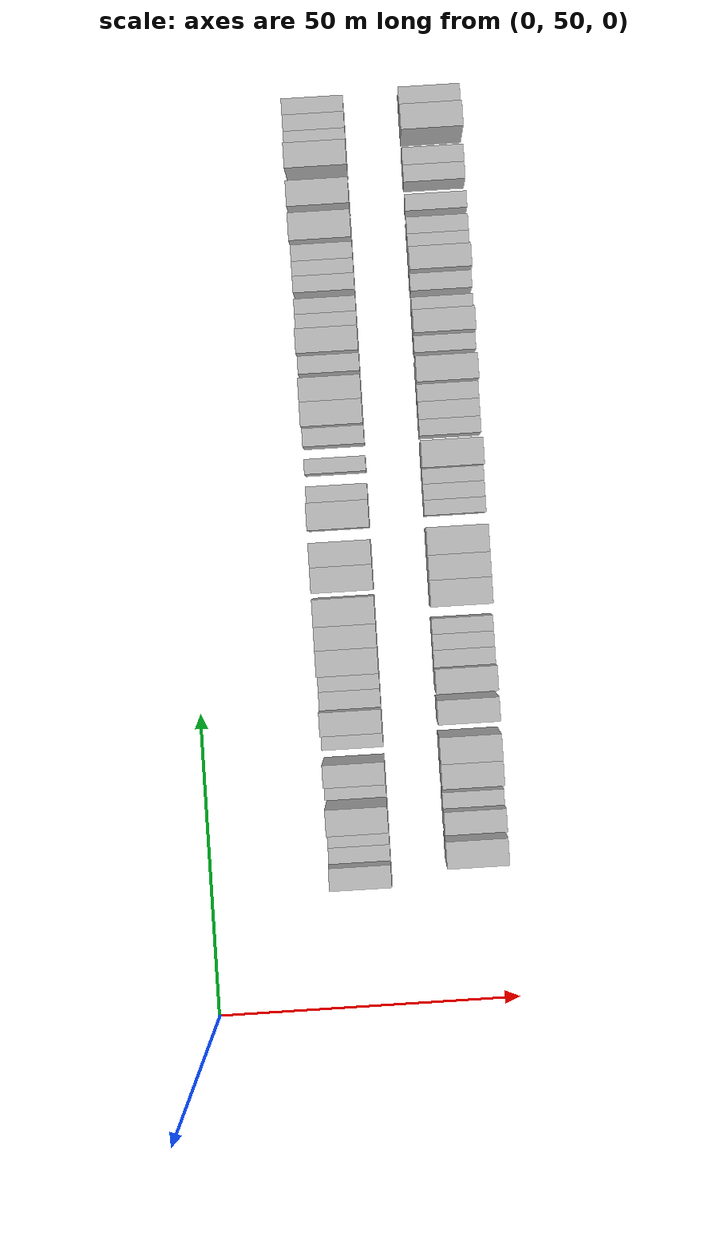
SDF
<sdf version="1.6">
 <world name="default">
  <model name="building_67">
   <static>1</static>
   <pose>25.0000 73.3921 0 0.000000 0.000000 0.000000</pose>
   <link name="link">
    <pose>0 0 4.50 0 0 0</pose>
    <collision name="collision"><geometry><box><size>10.0000 3.6559 9.0000</size></box></geometry></collision>
    <visual name="visual">
     <cast_shadows>0</cast_shadows>
     <geometry><box><size>10.0000 3.6559 9.0000</size></box></geometry>
     <material>
      <script>
       <uri>model://HANNAS_wall/materials/scripts</uri>
       <uri>model://HANNAS_wall/materials/textures</uri>
       <name>vrc/HANNAS_wall</name>
      </script>
     </material>
    </visual>
   </link>
  </model>
  <model name="building_68">
   <static>1</static>
   <pose>25.0000 76.5327 0 0.000000 0.000000 0.000000</pose>
   <link name="link">
    <pose>0 0 3.00 0 0 0</pose>
    <collision name="collision"><geometry><box><size>10.0000 2.6252 6.0000</size></box></geometry></collision>
    <visual name="visual">
     <cast_shadows>0</cast_shadows>
     <geometry><box><size>10.0000 2.6252 6.0000</size></box></geometry>
     <material>
      <script>
       <uri>model://HANNAS_wall/materials/scripts</uri>
       <uri>model://HANNAS_wall/materials/textures</uri>
       <name>vrc/HANNAS_wall</name>
      </script>
     </material>
    </visual>
   </link>
  </model>
  <model name="building_69">
   <static>1</static>
   <pose>25.0000 79.0698 0 0.000000 0.000000 0.000000</pose>
   <link name="link">
    <pose>0 0 3.00 0 0 0</pose>
    <collision name="collision"><geometry><box><size>10.0000 2.4490 6.0000</size></box></geometry></collision>
    <visual name="visual">
     <cast_shadows>0</cast_shadows>
     <geometry><box><size>10.0000 2.4490 6.0000</size></box></geometry>
     <material>
      <script>
       <uri>model://HANNAS_wall/materials/scripts</uri>
       <uri>model://HANNAS_wall/materials/textures</uri>
       <name>vrc/HANNAS_wall</name>
      </script>
     </material>
    </visual>
   </link>
  </model>
  <model name="building_70">
   <static>1</static>
   <pose>25.0000 82.4172 0 0.000000 0.000000 0.000000</pose>
   <link name="link">
    <pose>0 0 4.50 0 0 0</pose>
    <collision name="collision"><geometry><box><size>10.0000 4.2457 9.0000</size></box></geometry></collision>
    <visual name="visual">
     <cast_shadows>0</cast_shadows>
     <geometry><box><size>10.0000 4.2457 9.0000</size></box></geometry>
     <material>
      <script>
       <uri>model://HANNAS_wall/materials/scripts</uri>
       <uri>model://HANNAS_wall/materials/textures</uri>
       <name>vrc/HANNAS_wall</name>
      </script>
     </material>
    </visual>
   </link>
  </model>
  <model name="building_71">
   <static>1</static>
   <pose>25.0000 86.7797 0 0.000000 0.000000 0.000000</pose>
   <link name="link">
    <pose>0 0 3.00 0 0 0</pose>
    <collision name="collision"><geometry><box><size>10.0000 2.4792 6.0000</size></box></geometry></collision>
    <visual name="visual">
     <cast_shadows>0</cast_shadows>
     <geometry><box><size>10.0000 2.4792 6.0000</size></box></geometry>
     <material>
      <script>
       <uri>model://HANNAS_wall/materials/scripts</uri>
       <uri>model://HANNAS_wall/materials/textures</uri>
       <name>vrc/HANNAS_wall</name>
      </script>
     </material>
    </visual>
   </link>
  </model>
  <model name="building_72">
   <static>1</static>
   <pose>25.0000 89.8450 0 0.000000 0.000000 0.000000</pose>
   <link name="link">
    <pose>0 0 4.50 0 0 0</pose>
    <collision name="collision"><geometry><box><size>10.0000 3.6514 9.0000</size></box></geometry></collision>
    <visual name="visual">
     <cast_shadows>0</cast_shadows>
     <geometry><box><size>10.0000 3.6514 9.0000</size></box></geometry>
     <material>
      <script>
       <uri>model://HANNAS_wall/materials/scripts</uri>
       <uri>model://HANNAS_wall/materials/textures</uri>
       <name>vrc/HANNAS_wall</name>
      </script>
     </material>
    </visual>
   </link>
  </model>
  <model name="building_73">
   <static>1</static>
   <pose>25.0000 94.9658 0 0.000000 0.000000 0.000000</pose>
   <link name="link">
    <pose>0 0 3.00 0 0 0</pose>
    <collision name="collision"><geometry><box><size>10.0000 2.5901 6.0000</size></box></geometry></collision>
    <visual name="visual">
     <cast_shadows>0</cast_shadows>
     <geometry><box><size>10.0000 2.5901 6.0000</size></box></geometry>
     <material>
      <script>
       <uri>model://HANNAS_wall/materials/scripts</uri>
       <uri>model://HANNAS_wall/materials/textures</uri>
       <name>vrc/HANNAS_wall</name>
      </script>
     </material>
    </visual>
   </link>
  </model>
  <model name="building_74">
   <static>1</static>
   <pose>25.0000 98.1801 0 0.000000 0.000000 0.000000</pose>
   <link name="link">
    <pose>0 0 4.50 0 0 0</pose>
    <collision name="collision"><geometry><box><size>10.0000 3.8386 9.0000</size></box></geometry></collision>
    <visual name="visual">
     <cast_shadows>0</cast_shadows>
     <geometry><box><size>10.0000 3.8386 9.0000</size></box></geometry>
     <material>
      <script>
       <uri>model://HANNAS_wall/materials/scripts</uri>
       <uri>model://HANNAS_wall/materials/textures</uri>
       <name>vrc/HANNAS_wall</name>
      </script>
     </material>
    </visual>
   </link>
  </model>
  <model name="building_75">
   <static>1</static>
   <pose>25.0000 101.5952 0 0.000000 0.000000 0.000000</pose>
   <link name="link">
    <pose>0 0 3.00 0 0 0</pose>
    <collision name="collision"><geometry><box><size>10.0000 2.9917 6.0000</size></box></geometry></collision>
    <visual name="visual">
     <cast_shadows>0</cast_shadows>
     <geometry><box><size>10.0000 2.9917 6.0000</size></box></geometry>
     <material>
      <script>
       <uri>model://HANNAS_wall/materials/scripts</uri>
       <uri>model://HANNAS_wall/materials/textures</uri>
       <name>vrc/HANNAS_wall</name>
      </script>
     </material>
    </visual>
   </link>
  </model>
  <model name="building_76">
   <static>1</static>
   <pose>25.0000 104.4360 0 0.000000 0.000000 0.000000</pose>
   <link name="link">
    <pose>0 0 3.00 0 0 0</pose>
    <collision name="collision"><geometry><box><size>10.0000 2.6897 6.0000</size></box></geometry></collision>
    <visual name="visual">
     <cast_shadows>0</cast_shadows>
     <geometry><box><size>10.0000 2.6897 6.0000</size></box></geometry>
     <material>
      <script>
       <uri>model://HANNAS_wall/materials/scripts</uri>
       <uri>model://HANNAS_wall/materials/textures</uri>
       <name>vrc/HANNAS_wall</name>
      </script>
     </material>
    </visual>
   </link>
  </model>
  <model name="building_77">
   <static>1</static>
   <pose>25.0000 107.8729 0 0.000000 0.000000 0.000000</pose>
   <link name="link">
    <pose>0 0 4.50 0 0 0</pose>
    <collision name="collision"><geometry><box><size>10.0000 4.1841 9.0000</size></box></geometry></collision>
    <visual name="visual">
     <cast_shadows>0</cast_shadows>
     <geometry><box><size>10.0000 4.1841 9.0000</size></box></geometry>
     <material>
      <script>
       <uri>model://HANNAS_wall/materials/scripts</uri>
       <uri>model://HANNAS_wall/materials/textures</uri>
       <name>vrc/HANNAS_wall</name>
      </script>
     </material>
    </visual>
   </link>
  </model>
  <model name="building_78">
   <static>1</static>
   <pose>25.0000 111.8584 0 0.000000 0.000000 0.000000</pose>
   <link name="link">
    <pose>0 0 4.50 0 0 0</pose>
    <collision name="collision"><geometry><box><size>10.0000 3.7867 9.0000</size></box></geometry></collision>
    <visual name="visual">
     <cast_shadows>0</cast_shadows>
     <geometry><box><size>10.0000 3.7867 9.0000</size></box></geometry>
     <material>
      <script>
       <uri>model://HANNAS_wall/materials/scripts</uri>
       <uri>model://HANNAS_wall/materials/textures</uri>
       <name>vrc/HANNAS_wall</name>
      </script>
     </material>
    </visual>
   </link>
  </model>
  <model name="building_79">
   <static>1</static>
   <pose>25.0000 115.9600 0 0.000000 0.000000 0.000000</pose>
   <link name="link">
    <pose>0 0 4.50 0 0 0</pose>
    <collision name="collision"><geometry><box><size>10.0000 4.4166 9.0000</size></box></geometry></collision>
    <visual name="visual">
     <cast_shadows>0</cast_shadows>
     <geometry><box><size>10.0000 4.4166 9.0000</size></box></geometry>
     <material>
      <script>
       <uri>model://HANNAS_wall/materials/scripts</uri>
       <uri>model://HANNAS_wall/materials/textures</uri>
       <name>vrc/HANNAS_wall</name>
      </script>
     </material>
    </visual>
   </link>
  </model>
  <model name="building_80">
   <static>1</static>
   <pose>25.0000 121.2209 0 0.000000 0.000000 0.000000</pose>
   <link name="link">
    <pose>0 0 4.50 0 0 0</pose>
    <collision name="collision"><geometry><box><size>10.0000 4.1052 9.0000</size></box></geometry></collision>
    <visual name="visual">
     <cast_shadows>0</cast_shadows>
     <geometry><box><size>10.0000 4.1052 9.0000</size></box></geometry>
     <material>
      <script>
       <uri>model://HANNAS_wall/materials/scripts</uri>
       <uri>model://HANNAS_wall/materials/textures</uri>
       <name>vrc/HANNAS_wall</name>
      </script>
     </material>
    </visual>
   </link>
  </model>
  <model name="building_81">
   <static>1</static>
   <pose>25.0000 125.2416 0 0.000000 0.000000 0.000000</pose>
   <link name="link">
    <pose>0 0 4.50 0 0 0</pose>
    <collision name="collision"><geometry><box><size>10.0000 3.9362 9.0000</size></box></geometry></collision>
    <visual name="visual">
     <cast_shadows>0</cast_shadows>
     <geometry><box><size>10.0000 3.9362 9.0000</size></box></geometry>
     <material>
      <script>
       <uri>model://HANNAS_wall/materials/scripts</uri>
       <uri>model://HANNAS_wall/materials/textures</uri>
       <name>vrc/HANNAS_wall</name>
      </script>
     </material>
    </visual>
   </link>
  </model>
  <model name="building_82">
   <static>1</static>
   <pose>25.0000 131.4192 0 0.000000 0.000000 0.000000</pose>
   <link name="link">
    <pose>0 0 4.50 0 0 0</pose>
    <collision name="collision"><geometry><box><size>10.0000 4.4190 9.0000</size></box></geometry></collision>
    <visual name="visual">
     <cast_shadows>0</cast_shadows>
     <geometry><box><size>10.0000 4.4190 9.0000</size></box></geometry>
     <material>
      <script>
       <uri>model://HANNAS_wall/materials/scripts</uri>
       <uri>model://HANNAS_wall/materials/textures</uri>
       <name>vrc/HANNAS_wall</name>
      </script>
     </material>
    </visual>
   </link>
  </model>
  <model name="building_83">
   <static>1</static>
   <pose>25.0000 135.0095 0 0.000000 0.000000 0.000000</pose>
   <link name="link">
    <pose>0 0 3.00 0 0 0</pose>
    <collision name="collision"><geometry><box><size>10.0000 2.7616 6.0000</size></box></geometry></collision>
    <visual name="visual">
     <cast_shadows>0</cast_shadows>
     <geometry><box><size>10.0000 2.7616 6.0000</size></box></geometry>
     <material>
      <script>
       <uri>model://HANNAS_wall/materials/scripts</uri>
       <uri>model://HANNAS_wall/materials/textures</uri>
       <name>vrc/HANNAS_wall</name>
      </script>
     </material>
    </visual>
   </link>
  </model>
  <model name="building_84">
   <static>1</static>
   <pose>25.0000 139.6184 0 0.000000 0.000000 0.000000</pose>
   <link name="link">
    <pose>0 0 3.00 0 0 0</pose>
    <collision name="collision"><geometry><box><size>10.0000 2.4562 6.0000</size></box></geometry></collision>
    <visual name="visual">
     <cast_shadows>0</cast_shadows>
     <geometry><box><size>10.0000 2.4562 6.0000</size></box></geometry>
     <material>
      <script>
       <uri>model://HANNAS_wall/materials/scripts</uri>
       <uri>model://HANNAS_wall/materials/textures</uri>
       <name>vrc/HANNAS_wall</name>
      </script>
     </material>
    </visual>
   </link>
  </model>
  <model name="building_85">
   <static>1</static>
   <pose>25.0000 144.3354 0 0.000000 0.000000 0.000000</pose>
   <link name="link">
    <pose>0 0 3.00 0 0 0</pose>
    <collision name="collision"><geometry><box><size>10.0000 2.9779 6.0000</size></box></geometry></collision>
    <visual name="visual">
     <cast_shadows>0</cast_shadows>
     <geometry><box><size>10.0000 2.9779 6.0000</size></box></geometry>
     <material>
      <script>
       <uri>model://HANNAS_wall/materials/scripts</uri>
       <uri>model://HANNAS_wall/materials/textures</uri>
       <name>vrc/HANNAS_wall</name>
      </script>
     </material>
    </visual>
   </link>
  </model>
  <model name="building_86">
   <static>1</static>
   <pose>25.0000 147.8068 0 0.000000 0.000000 0.000000</pose>
   <link name="link">
    <pose>0 0 4.50 0 0 0</pose>
    <collision name="collision"><geometry><box><size>10.0000 3.9649 9.0000</size></box></geometry></collision>
    <visual name="visual">
     <cast_shadows>0</cast_shadows>
     <geometry><box><size>10.0000 3.9649 9.0000</size></box></geometry>
     <material>
      <script>
       <uri>model://HANNAS_wall/materials/scripts</uri>
       <uri>model://HANNAS_wall/materials/textures</uri>
       <name>vrc/HANNAS_wall</name>
      </script>
     </material>
    </visual>
   </link>
  </model>
  <model name="building_87">
   <static>1</static>
   <pose>25.0000 151.7134 0 0.000000 0.000000 0.000000</pose>
   <link name="link">
    <pose>0 0 4.50 0 0 0</pose>
    <collision name="collision"><geometry><box><size>10.0000 3.8483 9.0000</size></box></geometry></collision>
    <visual name="visual">
     <cast_shadows>0</cast_shadows>
     <geometry><box><size>10.0000 3.8483 9.0000</size></box></geometry>
     <material>
      <script>
       <uri>model://HANNAS_wall/materials/scripts</uri>
       <uri>model://HANNAS_wall/materials/textures</uri>
       <name>vrc/HANNAS_wall</name>
      </script>
     </material>
    </visual>
   </link>
  </model>
  <model name="building_88">
   <static>1</static>
   <pose>25.0000 156.0909 0 0.000000 0.000000 0.000000</pose>
   <link name="link">
    <pose>0 0 3.00 0 0 0</pose>
    <collision name="collision"><geometry><box><size>10.0000 2.9066 6.0000</size></box></geometry></collision>
    <visual name="visual">
     <cast_shadows>0</cast_shadows>
     <geometry><box><size>10.0000 2.9066 6.0000</size></box></geometry>
     <material>
      <script>
       <uri>model://HANNAS_wall/materials/scripts</uri>
       <uri>model://HANNAS_wall/materials/textures</uri>
       <name>vrc/HANNAS_wall</name>
      </script>
     </material>
    </visual>
   </link>
  </model>
  <model name="building_89">
   <static>1</static>
   <pose>25.0000 159.5267 0 0.000000 0.000000 0.000000</pose>
   <link name="link">
    <pose>0 0 4.50 0 0 0</pose>
    <collision name="collision"><geometry><box><size>10.0000 3.9651 9.0000</size></box></geometry></collision>
    <visual name="visual">
     <cast_shadows>0</cast_shadows>
     <geometry><box><size>10.0000 3.9651 9.0000</size></box></geometry>
     <material>
      <script>
       <uri>model://HANNAS_wall/materials/scripts</uri>
       <uri>model://HANNAS_wall/materials/textures</uri>
       <name>vrc/HANNAS_wall</name>
      </script>
     </material>
    </visual>
   </link>
  </model>
  <model name="building_90">
   <static>1</static>
   <pose>25.0000 162.9106 0 0.000000 0.000000 0.000000</pose>
   <link name="link">
    <pose>0 0 3.00 0 0 0</pose>
    <collision name="collision"><geometry><box><size>10.0000 2.8027 6.0000</size></box></geometry></collision>
    <visual name="visual">
     <cast_shadows>0</cast_shadows>
     <geometry><box><size>10.0000 2.8027 6.0000</size></box></geometry>
     <material>
      <script>
       <uri>model://HANNAS_wall/materials/scripts</uri>
       <uri>model://HANNAS_wall/materials/textures</uri>
       <name>vrc/HANNAS_wall</name>
      </script>
     </material>
    </visual>
   </link>
  </model>
  <model name="building_91">
   <static>1</static>
   <pose>25.0000 165.5663 0 0.000000 0.000000 0.000000</pose>
   <link name="link">
    <pose>0 0 3.00 0 0 0</pose>
    <collision name="collision"><geometry><box><size>10.0000 2.5087 6.0000</size></box></geometry></collision>
    <visual name="visual">
     <cast_shadows>0</cast_shadows>
     <geometry><box><size>10.0000 2.5087 6.0000</size></box></geometry>
     <material>
      <script>
       <uri>model://HANNAS_wall/materials/scripts</uri>
       <uri>model://HANNAS_wall/materials/textures</uri>
       <name>vrc/HANNAS_wall</name>
      </script>
     </material>
    </visual>
   </link>
  </model>
  <model name="building_92">
   <static>1</static>
   <pose>25.0000 169.1591 0 0.000000 0.000000 0.000000</pose>
   <link name="link">
    <pose>0 0 3.00 0 0 0</pose>
    <collision name="collision"><geometry><box><size>10.0000 2.6769 6.0000</size></box></geometry></collision>
    <visual name="visual">
     <cast_shadows>0</cast_shadows>
     <geometry><box><size>10.0000 2.6769 6.0000</size></box></geometry>
     <material>
      <script>
       <uri>model://HANNAS_wall/materials/scripts</uri>
       <uri>model://HANNAS_wall/materials/textures</uri>
       <name>vrc/HANNAS_wall</name>
      </script>
     </material>
    </visual>
   </link>
  </model>
  <model name="building_93">
   <static>1</static>
   <pose>25.0000 171.7067 0 0.000000 0.000000 0.000000</pose>
   <link name="link">
    <pose>0 0 3.00 0 0 0</pose>
    <collision name="collision"><geometry><box><size>10.0000 2.4183 6.0000</size></box></geometry></collision>
    <visual name="visual">
     <cast_shadows>0</cast_shadows>
     <geometry><box><size>10.0000 2.4183 6.0000</size></box></geometry>
     <material>
      <script>
       <uri>model://HANNAS_wall/materials/scripts</uri>
       <uri>model://HANNAS_wall/materials/textures</uri>
       <name>vrc/HANNAS_wall</name>
      </script>
     </material>
    </visual>
   </link>
  </model>
  <model name="building_94">
   <static>1</static>
   <pose>25.0000 174.2497 0 0.000000 0.000000 0.000000</pose>
   <link name="link">
    <pose>0 0 3.00 0 0 0</pose>
    <collision name="collision"><geometry><box><size>10.0000 2.6677 6.0000</size></box></geometry></collision>
    <visual name="visual">
     <cast_shadows>0</cast_shadows>
     <geometry><box><size>10.0000 2.6677 6.0000</size></box></geometry>
     <material>
      <script>
       <uri>model://HANNAS_wall/materials/scripts</uri>
       <uri>model://HANNAS_wall/materials/textures</uri>
       <name>vrc/HANNAS_wall</name>
      </script>
     </material>
    </visual>
   </link>
  </model>
  <model name="building_95">
   <static>1</static>
   <pose>25.0000 177.8080 0 0.000000 0.000000 0.000000</pose>
   <link name="link">
    <pose>0 0 4.50 0 0 0</pose>
    <collision name="collision"><geometry><box><size>10.0000 4.4490 9.0000</size></box></geometry></collision>
    <visual name="visual">
     <cast_shadows>0</cast_shadows>
     <geometry><box><size>10.0000 4.4490 9.0000</size></box></geometry>
     <material>
      <script>
       <uri>model://HANNAS_wall/materials/scripts</uri>
       <uri>model://HANNAS_wall/materials/textures</uri>
       <name>vrc/HANNAS_wall</name>
      </script>
     </material>
    </visual>
   </link>
  </model>
  <model name="building_96">
   <static>1</static>
   <pose>25.0000 183.0990 0 0.000000 0.000000 0.000000</pose>
   <link name="link">
    <pose>0 0 4.50 0 0 0</pose>
    <collision name="collision"><geometry><box><size>10.0000 4.1331 9.0000</size></box></geometry></collision>
    <visual name="visual">
     <cast_shadows>0</cast_shadows>
     <geometry><box><size>10.0000 4.1331 9.0000</size></box></geometry>
     <material>
      <script>
       <uri>model://HANNAS_wall/materials/scripts</uri>
       <uri>model://HANNAS_wall/materials/textures</uri>
       <name>vrc/HANNAS_wall</name>
      </script>
     </material>
    </visual>
   </link>
  </model>
  <model name="building_97">
   <static>1</static>
   <pose>25.0000 189.1878 0 0.000000 0.000000 0.000000</pose>
   <link name="link">
    <pose>0 0 4.50 0 0 0</pose>
    <collision name="collision"><geometry><box><size>10.0000 4.0444 9.0000</size></box></geometry></collision>
    <visual name="visual">
     <cast_shadows>0</cast_shadows>
     <geometry><box><size>10.0000 4.0444 9.0000</size></box></geometry>
     <material>
      <script>
       <uri>model://HANNAS_wall/materials/scripts</uri>
       <uri>model://HANNAS_wall/materials/textures</uri>
       <name>vrc/HANNAS_wall</name>
      </script>
     </material>
    </visual>
   </link>
  </model>
  <model name="building_98">
   <static>1</static>
   <pose>25.0000 192.5952 0 0.000000 0.000000 0.000000</pose>
   <link name="link">
    <pose>0 0 3.00 0 0 0</pose>
    <collision name="collision"><geometry><box><size>10.0000 2.7705 6.0000</size></box></geometry></collision>
    <visual name="visual">
     <cast_shadows>0</cast_shadows>
     <geometry><box><size>10.0000 2.7705 6.0000</size></box></geometry>
     <material>
      <script>
       <uri>model://HANNAS_wall/materials/scripts</uri>
       <uri>model://HANNAS_wall/materials/textures</uri>
       <name>vrc/HANNAS_wall</name>
      </script>
     </material>
    </visual>
   </link>
  </model>
  <model name="building_99">
   <static>1</static>
   <pose>25.0000 195.3099 0 0.000000 0.000000 0.000000</pose>
   <link name="link">
    <pose>0 0 3.00 0 0 0</pose>
    <collision name="collision"><geometry><box><size>10.0000 2.6589 6.0000</size></box></geometry></collision>
    <visual name="visual">
     <cast_shadows>0</cast_shadows>
     <geometry><box><size>10.0000 2.6589 6.0000</size></box></geometry>
     <material>
      <script>
       <uri>model://HANNAS_wall/materials/scripts</uri>
       <uri>model://HANNAS_wall/materials/textures</uri>
       <name>vrc/HANNAS_wall</name>
      </script>
     </material>
    </visual>
   </link>
  </model>
  <model name="building_100">
   <static>1</static>
   <pose>25.0000 197.9476 0 0.000000 0.000000 0.000000</pose>
   <link name="link">
    <pose>0 0 3.00 0 0 0</pose>
    <collision name="collision"><geometry><box><size>10.0000 2.6164 6.0000</size></box></geometry></collision>
    <visual name="visual">
     <cast_shadows>0</cast_shadows>
     <geometry><box><size>10.0000 2.6164 6.0000</size></box></geometry>
     <material>
      <script>
       <uri>model://HANNAS_wall/materials/scripts</uri>
       <uri>model://HANNAS_wall/materials/textures</uri>
       <name>vrc/HANNAS_wall</name>
      </script>
     </material>
    </visual>
   </link>
  </model>
  <model name="building_167">
   <static>1</static>
   <pose>44.0000 76.1062 0 0.000000 0.000000 0.000000</pose>
   <link name="link">
    <pose>0 0 4.50 0 0 0</pose>
    <collision name="collision"><geometry><box><size>10.0000 4.3618 9.0000</size></box></geometry></collision>
    <visual name="visual">
     <cast_shadows>0</cast_shadows>
     <geometry><box><size>10.0000 4.3618 9.0000</size></box></geometry>
     <material>
      <script>
       <uri>model://HANNAS_wall/materials/scripts</uri>
       <uri>model://HANNAS_wall/materials/textures</uri>
       <name>vrc/HANNAS_wall</name>
      </script>
     </material>
    </visual>
   </link>
  </model>
  <model name="building_168">
   <static>1</static>
   <pose>44.0000 81.1547 0 0.000000 0.000000 0.000000</pose>
   <link name="link">
    <pose>0 0 4.50 0 0 0</pose>
    <collision name="collision"><geometry><box><size>10.0000 3.7352 9.0000</size></box></geometry></collision>
    <visual name="visual">
     <cast_shadows>0</cast_shadows>
     <geometry><box><size>10.0000 3.7352 9.0000</size></box></geometry>
     <material>
      <script>
       <uri>model://HANNAS_wall/materials/scripts</uri>
       <uri>model://HANNAS_wall/materials/textures</uri>
       <name>vrc/HANNAS_wall</name>
      </script>
     </material>
    </visual>
   </link>
  </model>
  <model name="building_169">
   <static>1</static>
   <pose>44.0000 84.3300 0 0.000000 0.000000 0.000000</pose>
   <link name="link">
    <pose>0 0 3.00 0 0 0</pose>
    <collision name="collision"><geometry><box><size>10.0000 2.6152 6.0000</size></box></geometry></collision>
    <visual name="visual">
     <cast_shadows>0</cast_shadows>
     <geometry><box><size>10.0000 2.6152 6.0000</size></box></geometry>
     <material>
      <script>
       <uri>model://HANNAS_wall/materials/scripts</uri>
       <uri>model://HANNAS_wall/materials/textures</uri>
       <name>vrc/HANNAS_wall</name>
      </script>
     </material>
    </visual>
   </link>
  </model>
  <model name="building_170">
   <static>1</static>
   <pose>44.0000 88.6331 0 0.000000 0.000000 0.000000</pose>
   <link name="link">
    <pose>0 0 4.50 0 0 0</pose>
    <collision name="collision"><geometry><box><size>10.0000 3.9911 9.0000</size></box></geometry></collision>
    <visual name="visual">
     <cast_shadows>0</cast_shadows>
     <geometry><box><size>10.0000 3.9911 9.0000</size></box></geometry>
     <material>
      <script>
       <uri>model://HANNAS_wall/materials/scripts</uri>
       <uri>model://HANNAS_wall/materials/textures</uri>
       <name>vrc/HANNAS_wall</name>
      </script>
     </material>
    </visual>
   </link>
  </model>
  <model name="building_171">
   <static>1</static>
   <pose>44.0000 92.7937 0 0.000000 0.000000 0.000000</pose>
   <link name="link">
    <pose>0 0 4.50 0 0 0</pose>
    <collision name="collision"><geometry><box><size>10.0000 4.3300 9.0000</size></box></geometry></collision>
    <visual name="visual">
     <cast_shadows>0</cast_shadows>
     <geometry><box><size>10.0000 4.3300 9.0000</size></box></geometry>
     <material>
      <script>
       <uri>model://HANNAS_wall/materials/scripts</uri>
       <uri>model://HANNAS_wall/materials/textures</uri>
       <name>vrc/HANNAS_wall</name>
      </script>
     </material>
    </visual>
   </link>
  </model>
  <model name="building_172">
   <static>1</static>
   <pose>44.0000 98.9204 0 0.000000 0.000000 0.000000</pose>
   <link name="link">
    <pose>0 0 4.50 0 0 0</pose>
    <collision name="collision"><geometry><box><size>10.0000 3.9235 9.0000</size></box></geometry></collision>
    <visual name="visual">
     <cast_shadows>0</cast_shadows>
     <geometry><box><size>10.0000 3.9235 9.0000</size></box></geometry>
     <material>
      <script>
       <uri>model://HANNAS_wall/materials/scripts</uri>
       <uri>model://HANNAS_wall/materials/textures</uri>
       <name>vrc/HANNAS_wall</name>
      </script>
     </material>
    </visual>
   </link>
  </model>
  <model name="building_173">
   <static>1</static>
   <pose>44.0000 103.8852 0 0.000000 0.000000 0.000000</pose>
   <link name="link">
    <pose>0 0 4.50 0 0 0</pose>
    <collision name="collision"><geometry><box><size>10.0000 4.0060 9.0000</size></box></geometry></collision>
    <visual name="visual">
     <cast_shadows>0</cast_shadows>
     <geometry><box><size>10.0000 4.0060 9.0000</size></box></geometry>
     <material>
      <script>
       <uri>model://HANNAS_wall/materials/scripts</uri>
       <uri>model://HANNAS_wall/materials/textures</uri>
       <name>vrc/HANNAS_wall</name>
      </script>
     </material>
    </visual>
   </link>
  </model>
  <model name="building_174">
   <static>1</static>
   <pose>44.0000 107.2932 0 0.000000 0.000000 0.000000</pose>
   <link name="link">
    <pose>0 0 3.00 0 0 0</pose>
    <collision name="collision"><geometry><box><size>10.0000 2.8100 6.0000</size></box></geometry></collision>
    <visual name="visual">
     <cast_shadows>0</cast_shadows>
     <geometry><box><size>10.0000 2.8100 6.0000</size></box></geometry>
     <material>
      <script>
       <uri>model://HANNAS_wall/materials/scripts</uri>
       <uri>model://HANNAS_wall/materials/textures</uri>
       <name>vrc/HANNAS_wall</name>
      </script>
     </material>
    </visual>
   </link>
  </model>
  <model name="building_175">
   <static>1</static>
   <pose>44.0000 109.9838 0 0.000000 0.000000 0.000000</pose>
   <link name="link">
    <pose>0 0 3.00 0 0 0</pose>
    <collision name="collision"><geometry><box><size>10.0000 2.5712 6.0000</size></box></geometry></collision>
    <visual name="visual">
     <cast_shadows>0</cast_shadows>
     <geometry><box><size>10.0000 2.5712 6.0000</size></box></geometry>
     <material>
      <script>
       <uri>model://HANNAS_wall/materials/scripts</uri>
       <uri>model://HANNAS_wall/materials/textures</uri>
       <name>vrc/HANNAS_wall</name>
      </script>
     </material>
    </visual>
   </link>
  </model>
  <model name="building_176">
   <static>1</static>
   <pose>44.0000 112.5415 0 0.000000 0.000000 0.000000</pose>
   <link name="link">
    <pose>0 0 3.00 0 0 0</pose>
    <collision name="collision"><geometry><box><size>10.0000 2.5443 6.0000</size></box></geometry></collision>
    <visual name="visual">
     <cast_shadows>0</cast_shadows>
     <geometry><box><size>10.0000 2.5443 6.0000</size></box></geometry>
     <material>
      <script>
       <uri>model://HANNAS_wall/materials/scripts</uri>
       <uri>model://HANNAS_wall/materials/textures</uri>
       <name>vrc/HANNAS_wall</name>
      </script>
     </material>
    </visual>
   </link>
  </model>
  <model name="building_177">
   <static>1</static>
   <pose>44.0000 117.9492 0 0.000000 0.000000 0.000000</pose>
   <link name="link">
    <pose>0 0 4.50 0 0 0</pose>
    <collision name="collision"><geometry><box><size>10.0000 4.2711 9.0000</size></box></geometry></collision>
    <visual name="visual">
     <cast_shadows>0</cast_shadows>
     <geometry><box><size>10.0000 4.2711 9.0000</size></box></geometry>
     <material>
      <script>
       <uri>model://HANNAS_wall/materials/scripts</uri>
       <uri>model://HANNAS_wall/materials/textures</uri>
       <name>vrc/HANNAS_wall</name>
      </script>
     </material>
    </visual>
   </link>
  </model>
  <model name="building_178">
   <static>1</static>
   <pose>44.0000 122.0897 0 0.000000 0.000000 0.000000</pose>
   <link name="link">
    <pose>0 0 4.50 0 0 0</pose>
    <collision name="collision"><geometry><box><size>10.0000 4.0100 9.0000</size></box></geometry></collision>
    <visual name="visual">
     <cast_shadows>0</cast_shadows>
     <geometry><box><size>10.0000 4.0100 9.0000</size></box></geometry>
     <material>
      <script>
       <uri>model://HANNAS_wall/materials/scripts</uri>
       <uri>model://HANNAS_wall/materials/textures</uri>
       <name>vrc/HANNAS_wall</name>
      </script>
     </material>
    </visual>
   </link>
  </model>
  <model name="building_179">
   <static>1</static>
   <pose>44.0000 126.3116 0 0.000000 0.000000 0.000000</pose>
   <link name="link">
    <pose>0 0 4.50 0 0 0</pose>
    <collision name="collision"><geometry><box><size>10.0000 4.4339 9.0000</size></box></geometry></collision>
    <visual name="visual">
     <cast_shadows>0</cast_shadows>
     <geometry><box><size>10.0000 4.4339 9.0000</size></box></geometry>
     <material>
      <script>
       <uri>model://HANNAS_wall/materials/scripts</uri>
       <uri>model://HANNAS_wall/materials/textures</uri>
       <name>vrc/HANNAS_wall</name>
      </script>
     </material>
    </visual>
   </link>
  </model>
  <model name="building_180">
   <static>1</static>
   <pose>44.0000 131.7787 0 0.000000 0.000000 0.000000</pose>
   <link name="link">
    <pose>0 0 3.00 0 0 0</pose>
    <collision name="collision"><geometry><box><size>10.0000 2.5003 6.0000</size></box></geometry></collision>
    <visual name="visual">
     <cast_shadows>0</cast_shadows>
     <geometry><box><size>10.0000 2.5003 6.0000</size></box></geometry>
     <material>
      <script>
       <uri>model://HANNAS_wall/materials/scripts</uri>
       <uri>model://HANNAS_wall/materials/textures</uri>
       <name>vrc/HANNAS_wall</name>
      </script>
     </material>
    </visual>
   </link>
  </model>
  <model name="building_181">
   <static>1</static>
   <pose>44.0000 134.3264 0 0.000000 0.000000 0.000000</pose>
   <link name="link">
    <pose>0 0 3.00 0 0 0</pose>
    <collision name="collision"><geometry><box><size>10.0000 2.5949 6.0000</size></box></geometry></collision>
    <visual name="visual">
     <cast_shadows>0</cast_shadows>
     <geometry><box><size>10.0000 2.5949 6.0000</size></box></geometry>
     <material>
      <script>
       <uri>model://HANNAS_wall/materials/scripts</uri>
       <uri>model://HANNAS_wall/materials/textures</uri>
       <name>vrc/HANNAS_wall</name>
      </script>
     </material>
    </visual>
   </link>
  </model>
  <model name="building_182">
   <static>1</static>
   <pose>44.0000 136.8582 0 0.000000 0.000000 0.000000</pose>
   <link name="link">
    <pose>0 0 3.00 0 0 0</pose>
    <collision name="collision"><geometry><box><size>10.0000 2.4686 6.0000</size></box></geometry></collision>
    <visual name="visual">
     <cast_shadows>0</cast_shadows>
     <geometry><box><size>10.0000 2.4686 6.0000</size></box></geometry>
     <material>
      <script>
       <uri>model://HANNAS_wall/materials/scripts</uri>
       <uri>model://HANNAS_wall/materials/textures</uri>
       <name>vrc/HANNAS_wall</name>
      </script>
     </material>
    </visual>
   </link>
  </model>
  <model name="building_183">
   <static>1</static>
   <pose>44.0000 140.2632 0 0.000000 0.000000 0.000000</pose>
   <link name="link">
    <pose>0 0 4.50 0 0 0</pose>
    <collision name="collision"><geometry><box><size>10.0000 4.3414 9.0000</size></box></geometry></collision>
    <visual name="visual">
     <cast_shadows>0</cast_shadows>
     <geometry><box><size>10.0000 4.3414 9.0000</size></box></geometry>
     <material>
      <script>
       <uri>model://HANNAS_wall/materials/scripts</uri>
       <uri>model://HANNAS_wall/materials/textures</uri>
       <name>vrc/HANNAS_wall</name>
      </script>
     </material>
    </visual>
   </link>
  </model>
  <model name="building_184">
   <static>1</static>
   <pose>44.0000 144.7675 0 0.000000 0.000000 0.000000</pose>
   <link name="link">
    <pose>0 0 3.00 0 0 0</pose>
    <collision name="collision"><geometry><box><size>10.0000 2.6671 6.0000</size></box></geometry></collision>
    <visual name="visual">
     <cast_shadows>0</cast_shadows>
     <geometry><box><size>10.0000 2.6671 6.0000</size></box></geometry>
     <material>
      <script>
       <uri>model://HANNAS_wall/materials/scripts</uri>
       <uri>model://HANNAS_wall/materials/textures</uri>
       <name>vrc/HANNAS_wall</name>
      </script>
     </material>
    </visual>
   </link>
  </model>
  <model name="building_185">
   <static>1</static>
   <pose>44.0000 147.5397 0 0.000000 0.000000 0.000000</pose>
   <link name="link">
    <pose>0 0 3.00 0 0 0</pose>
    <collision name="collision"><geometry><box><size>10.0000 2.8774 6.0000</size></box></geometry></collision>
    <visual name="visual">
     <cast_shadows>0</cast_shadows>
     <geometry><box><size>10.0000 2.8774 6.0000</size></box></geometry>
     <material>
      <script>
       <uri>model://HANNAS_wall/materials/scripts</uri>
       <uri>model://HANNAS_wall/materials/textures</uri>
       <name>vrc/HANNAS_wall</name>
      </script>
     </material>
    </visual>
   </link>
  </model>
  <model name="building_186">
   <static>1</static>
   <pose>44.0000 150.3921 0 0.000000 0.000000 0.000000</pose>
   <link name="link">
    <pose>0 0 3.00 0 0 0</pose>
    <collision name="collision"><geometry><box><size>10.0000 2.8275 6.0000</size></box></geometry></collision>
    <visual name="visual">
     <cast_shadows>0</cast_shadows>
     <geometry><box><size>10.0000 2.8275 6.0000</size></box></geometry>
     <material>
      <script>
       <uri>model://HANNAS_wall/materials/scripts</uri>
       <uri>model://HANNAS_wall/materials/textures</uri>
       <name>vrc/HANNAS_wall</name>
      </script>
     </material>
    </visual>
   </link>
  </model>
  <model name="building_187">
   <static>1</static>
   <pose>44.0000 153.8697 0 0.000000 0.000000 0.000000</pose>
   <link name="link">
    <pose>0 0 4.50 0 0 0</pose>
    <collision name="collision"><geometry><box><size>10.0000 4.1277 9.0000</size></box></geometry></collision>
    <visual name="visual">
     <cast_shadows>0</cast_shadows>
     <geometry><box><size>10.0000 4.1277 9.0000</size></box></geometry>
     <material>
      <script>
       <uri>model://HANNAS_wall/materials/scripts</uri>
       <uri>model://HANNAS_wall/materials/textures</uri>
       <name>vrc/HANNAS_wall</name>
      </script>
     </material>
    </visual>
   </link>
  </model>
  <model name="building_188">
   <static>1</static>
   <pose>44.0000 158.2958 0 0.000000 0.000000 0.000000</pose>
   <link name="link">
    <pose>0 0 3.00 0 0 0</pose>
    <collision name="collision"><geometry><box><size>10.0000 2.7245 6.0000</size></box></geometry></collision>
    <visual name="visual">
     <cast_shadows>0</cast_shadows>
     <geometry><box><size>10.0000 2.7245 6.0000</size></box></geometry>
     <material>
      <script>
       <uri>model://HANNAS_wall/materials/scripts</uri>
       <uri>model://HANNAS_wall/materials/textures</uri>
       <name>vrc/HANNAS_wall</name>
      </script>
     </material>
    </visual>
   </link>
  </model>
  <model name="building_189">
   <static>1</static>
   <pose>44.0000 161.5183 0 0.000000 0.000000 0.000000</pose>
   <link name="link">
    <pose>0 0 4.50 0 0 0</pose>
    <collision name="collision"><geometry><box><size>10.0000 3.7206 9.0000</size></box></geometry></collision>
    <visual name="visual">
     <cast_shadows>0</cast_shadows>
     <geometry><box><size>10.0000 3.7206 9.0000</size></box></geometry>
     <material>
      <script>
       <uri>model://HANNAS_wall/materials/scripts</uri>
       <uri>model://HANNAS_wall/materials/textures</uri>
       <name>vrc/HANNAS_wall</name>
      </script>
     </material>
    </visual>
   </link>
  </model>
  <model name="building_190">
   <static>1</static>
   <pose>44.0000 164.6498 0 0.000000 0.000000 0.000000</pose>
   <link name="link">
    <pose>0 0 3.00 0 0 0</pose>
    <collision name="collision"><geometry><box><size>10.0000 2.5424 6.0000</size></box></geometry></collision>
    <visual name="visual">
     <cast_shadows>0</cast_shadows>
     <geometry><box><size>10.0000 2.5424 6.0000</size></box></geometry>
     <material>
      <script>
       <uri>model://HANNAS_wall/materials/scripts</uri>
       <uri>model://HANNAS_wall/materials/textures</uri>
       <name>vrc/HANNAS_wall</name>
      </script>
     </material>
    </visual>
   </link>
  </model>
  <model name="building_191">
   <static>1</static>
   <pose>44.0000 168.3392 0 0.000000 0.000000 0.000000</pose>
   <link name="link">
    <pose>0 0 3.00 0 0 0</pose>
    <collision name="collision"><geometry><box><size>10.0000 2.8365 6.0000</size></box></geometry></collision>
    <visual name="visual">
     <cast_shadows>0</cast_shadows>
     <geometry><box><size>10.0000 2.8365 6.0000</size></box></geometry>
     <material>
      <script>
       <uri>model://HANNAS_wall/materials/scripts</uri>
       <uri>model://HANNAS_wall/materials/textures</uri>
       <name>vrc/HANNAS_wall</name>
      </script>
     </material>
    </visual>
   </link>
  </model>
  <model name="building_192">
   <static>1</static>
   <pose>44.0000 171.6046 0 0.000000 0.000000 0.000000</pose>
   <link name="link">
    <pose>0 0 4.50 0 0 0</pose>
    <collision name="collision"><geometry><box><size>10.0000 3.6943 9.0000</size></box></geometry></collision>
    <visual name="visual">
     <cast_shadows>0</cast_shadows>
     <geometry><box><size>10.0000 3.6943 9.0000</size></box></geometry>
     <material>
      <script>
       <uri>model://HANNAS_wall/materials/scripts</uri>
       <uri>model://HANNAS_wall/materials/textures</uri>
       <name>vrc/HANNAS_wall</name>
      </script>
     </material>
    </visual>
   </link>
  </model>
  <model name="building_193">
   <static>1</static>
   <pose>44.0000 174.8179 0 0.000000 0.000000 0.000000</pose>
   <link name="link">
    <pose>0 0 3.00 0 0 0</pose>
    <collision name="collision"><geometry><box><size>10.0000 2.7321 6.0000</size></box></geometry></collision>
    <visual name="visual">
     <cast_shadows>0</cast_shadows>
     <geometry><box><size>10.0000 2.7321 6.0000</size></box></geometry>
     <material>
      <script>
       <uri>model://HANNAS_wall/materials/scripts</uri>
       <uri>model://HANNAS_wall/materials/textures</uri>
       <name>vrc/HANNAS_wall</name>
      </script>
     </material>
    </visual>
   </link>
  </model>
  <model name="building_194">
   <static>1</static>
   <pose>44.0000 177.5371 0 0.000000 0.000000 0.000000</pose>
   <link name="link">
    <pose>0 0 3.00 0 0 0</pose>
    <collision name="collision"><geometry><box><size>10.0000 2.7064 6.0000</size></box></geometry></collision>
    <visual name="visual">
     <cast_shadows>0</cast_shadows>
     <geometry><box><size>10.0000 2.7064 6.0000</size></box></geometry>
     <material>
      <script>
       <uri>model://HANNAS_wall/materials/scripts</uri>
       <uri>model://HANNAS_wall/materials/textures</uri>
       <name>vrc/HANNAS_wall</name>
      </script>
     </material>
    </visual>
   </link>
  </model>
  <model name="building_195">
   <static>1</static>
   <pose>44.0000 181.2290 0 0.000000 0.000000 0.000000</pose>
   <link name="link">
    <pose>0 0 3.00 0 0 0</pose>
    <collision name="collision"><geometry><box><size>10.0000 2.6773 6.0000</size></box></geometry></collision>
    <visual name="visual">
     <cast_shadows>0</cast_shadows>
     <geometry><box><size>10.0000 2.6773 6.0000</size></box></geometry>
     <material>
      <script>
       <uri>model://HANNAS_wall/materials/scripts</uri>
       <uri>model://HANNAS_wall/materials/textures</uri>
       <name>vrc/HANNAS_wall</name>
      </script>
     </material>
    </visual>
   </link>
  </model>
  <model name="building_196">
   <static>1</static>
   <pose>44.0000 185.9521 0 0.000000 0.000000 0.000000</pose>
   <link name="link">
    <pose>0 0 3.00 0 0 0</pose>
    <collision name="collision"><geometry><box><size>10.0000 2.7688 6.0000</size></box></geometry></collision>
    <visual name="visual">
     <cast_shadows>0</cast_shadows>
     <geometry><box><size>10.0000 2.7688 6.0000</size></box></geometry>
     <material>
      <script>
       <uri>model://HANNAS_wall/materials/scripts</uri>
       <uri>model://HANNAS_wall/materials/textures</uri>
       <name>vrc/HANNAS_wall</name>
      </script>
     </material>
    </visual>
   </link>
  </model>
  <model name="building_197">
   <static>1</static>
   <pose>44.0000 188.7443 0 0.000000 0.000000 0.000000</pose>
   <link name="link">
    <pose>0 0 3.00 0 0 0</pose>
    <collision name="collision"><geometry><box><size>10.0000 2.8157 6.0000</size></box></geometry></collision>
    <visual name="visual">
     <cast_shadows>0</cast_shadows>
     <geometry><box><size>10.0000 2.8157 6.0000</size></box></geometry>
     <material>
      <script>
       <uri>model://HANNAS_wall/materials/scripts</uri>
       <uri>model://HANNAS_wall/materials/textures</uri>
       <name>vrc/HANNAS_wall</name>
      </script>
     </material>
    </visual>
   </link>
  </model>
  <model name="building_198">
   <static>1</static>
   <pose>44.0000 194.1881 0 0.000000 0.000000 0.000000</pose>
   <link name="link">
    <pose>0 0 4.50 0 0 0</pose>
    <collision name="collision"><geometry><box><size>10.0000 4.0718 9.0000</size></box></geometry></collision>
    <visual name="visual">
     <cast_shadows>0</cast_shadows>
     <geometry><box><size>10.0000 4.0718 9.0000</size></box></geometry>
     <material>
      <script>
       <uri>model://HANNAS_wall/materials/scripts</uri>
       <uri>model://HANNAS_wall/materials/textures</uri>
       <name>vrc/HANNAS_wall</name>
      </script>
     </material>
    </visual>
   </link>
  </model>
  <model name="building_199">
   <static>1</static>
   <pose>44.0000 198.6024 0 0.000000 0.000000 0.000000</pose>
   <link name="link">
    <pose>0 0 3.00 0 0 0</pose>
    <collision name="collision"><geometry><box><size>10.0000 2.7569 6.0000</size></box></geometry></collision>
    <visual name="visual">
     <cast_shadows>0</cast_shadows>
     <geometry><box><size>10.0000 2.7569 6.0000</size></box></geometry>
     <material>
      <script>
       <uri>model://HANNAS_wall/materials/scripts</uri>
       <uri>model://HANNAS_wall/materials/textures</uri>
       <name>vrc/HANNAS_wall</name>
      </script>
     </material>
    </visual>
   </link>
  </model>
 </world>
</sdf>
